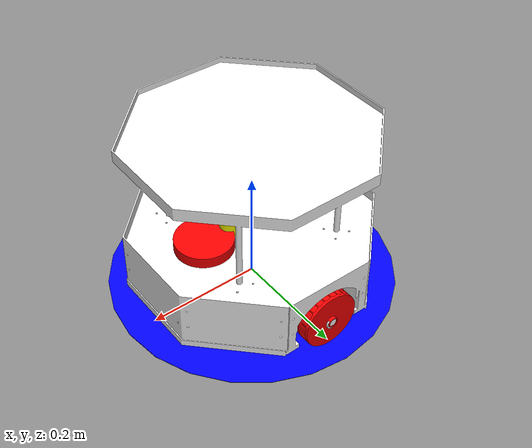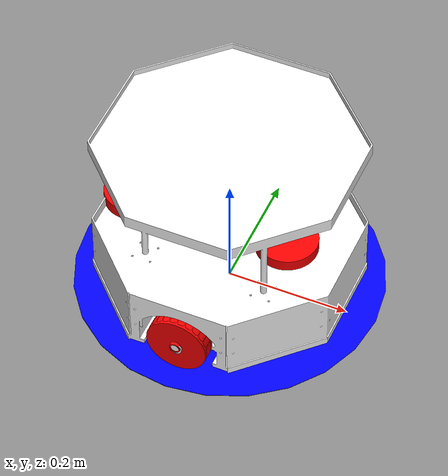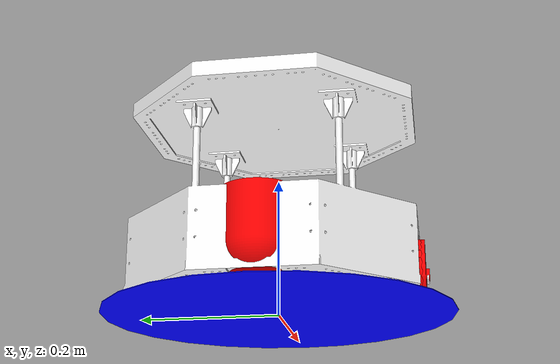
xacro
<?xml version="1.0" encoding="utf-8"?>
<robot name="u_bot" xmlns:xacro="http://www.ros.org/wiki/xacro">

	<xacro:property name="clearance" value="0" />
	<xacro:property name="wheel_radius" value="0.05"/>
	<xacro:property name="wheel_separation" value="0.152"/>
	<xacro:property name="wheel_width" value="0.026"/>
	<xacro:property name="PI" value="3.1415926"/>

	<xacro:include filename="$(find description)/urdf/matherials.xacro" />

	<link name="base_link">
		<visual>
			<origin xyz="0 0 0" rpy="0 0 0" />
			<geometry>
				<sphere radius="0.001" />
			</geometry>
		</visual>
	</link>

	<link name="base_footprint">
		<visual>
			<origin xyz="0 0 0" rpy="0 0 0" />
			<geometry>
				<cylinder length="0.001" radius="0.250" />
			</geometry>
			<material name="Blue" />
		</visual>
	</link>

	<link name="robot_base">
		<visual>
			<origin xyz="0 0 0" rpy="0 0 0" />
			<geometry>
				<mesh filename="package://description/meshes/base.stl" />
			</geometry>
			<material name="White" />
		</visual>
		<collision>
			<origin xyz="0 0 0" rpy="0 0 0" />
			<geometry>
				<mesh filename="package://description/meshes/base.stl" />
			</geometry>
		</collision>
	</link>

	<joint name="base_link_to_abot_base" type="fixed">
		<origin xyz="0 0 0.02" rpy="0 0 0" />
		<parent link="base_link" />
		<child link="robot_base" />
	</joint>

	<joint name="base_footprint_to_base_link" type="fixed">
		<origin xyz="0 0 ${clearance}" rpy="0 0 0" />
		<parent link="base_footprint" />
		<child link="base_link" />
	</joint>

	<xacro:include filename="$(find description)/urdf/left_wheel.xacro" />
	<xacro:include filename="$(find description)/urdf/right_wheel.xacro" />
	<xacro:include filename="$(find description)/urdf/caster_wheel.xacro" />
	<xacro:include filename="$(find description)/urdf/sensors.xacro" />
</robot>

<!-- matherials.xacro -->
<robot name="u_bot">
	<material name="Green">
		<color rgba="0.0 1.0 0.0 1.0"/>
	</material>
	<material name="Blue">
		<color rgba="0.0 0.0 1.0 1.0"/>
	</material>
	<material name="Red">
		<color rgba="1.0 0.0 0.0 1.0"/>
	</material>
	<material name="White">
		<color rgba="1.0 1.0 1.0 1.0"/>
	</material>
	<material name="Yellow">
		<color rgba="1.0 1.0 0.0 1.0"/>
	</material>
	<material name="Black">
		<color rgba="0.0 0.0 0.0 1.0"/>
	</material>
</robot>

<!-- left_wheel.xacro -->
<robot name="u_bot">

	<link name="robot_left_wheel">
		<visual>
			<origin xyz="0 0 0" rpy="0 0 0" />
			<geometry>
				<mesh filename="package://description/meshes/left_wheel.stl" />
			</geometry>
			<material name="Red" />
		</visual>
		<collision>
			<origin xyz="0 0 0" rpy="0 0 0" />
			<geometry>
				<mesh filename="package://description/meshes/left_wheel.stl" />
			</geometry>
		</collision>
	</link>

	<link name="left_wheel">
		<visual>
			<origin xyz="0 0 0" rpy="${PI/2} 0 0" />
			<geometry>
				<cylinder length="${wheel_width}" radius="${wheel_radius}"/>
			</geometry>
			<material name="Red" />
		</visual>
		<collision>
			<origin xyz="0 0 0" rpy="${PI/2} 0 0" />
			<geometry>
				<cylinder length="${wheel_width}" radius="${wheel_radius}"/>
			</geometry>
		</collision>
	</link>

	<joint name="left_wheel_to_robot_left_wheel" type="fixed">
		<origin xyz="0 0 0" rpy="0 0 0" />
		<parent link="left_wheel" />
		<child link="robot_left_wheel" />
	</joint>

	<joint name="left_wheel_to_base" type="continuous">
		<origin xyz="0 0.195 0.03" rpy="0 0 0" />
		<parent link="robot_base" />
		<child link="left_wheel" />
		<axis xyz="0 1 0" />
	</joint>
</robot>

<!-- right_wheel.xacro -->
<robot name="u_bot">

	<link name="robot_right_wheel">
		<visual>
			<origin xyz="0 0 0" rpy="0 0 0" />
			<geometry>
				<mesh filename="package://description/meshes/right_wheel.stl" />
			</geometry>
			<material name="Red" />
		</visual>
		<collision>
			<origin xyz="0 0 0" rpy="0 0 0" />
			<geometry>
				<mesh filename="package://description/meshes/right_wheel.stl" />
			</geometry>
		</collision>
	</link>

	<link name="right_wheel">
		<visual>
			<origin xyz="0 0 0" rpy="${PI/2} 0 0" />
			<geometry>
				<cylinder length="${wheel_width}" radius="${wheel_radius}"/>
			</geometry>
			<material name="Red" />
		</visual>
		<collision>
			<origin xyz="0 0 0" rpy="${PI/2} 0 0" />
			<geometry>
				<cylinder length="${wheel_width}" radius="${wheel_radius}"/>
			</geometry>
		</collision>
	</link>

	<joint name="right_wheel_to_robot_right_wheel" type="fixed">
		<origin xyz="0 0 0" rpy="0 0 0" />
		<parent link="right_wheel" />
		<child link="robot_right_wheel" />
	</joint>

	<joint name="right_wheel_to_base" type="continuous">
		<origin xyz="0 -0.195 0.03" rpy="0 0 0" />
		<parent link="robot_base" />
		<child link="right_wheel" />
		<axis xyz="0 1 0" />
	</joint>
</robot>

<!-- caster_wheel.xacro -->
<robot name="u_bot">

	<link name="robot_caster_wheel_1">
		<visual>
			<origin xyz="0 0 0" rpy="0 0 0" />
			<geometry>
				<mesh filename="package://description/meshes/caster_wheel.stl" />
			</geometry>
			<material name="Red" />
		</visual>
		<collision>
			<origin xyz="0 0 0" rpy="0 0 0" />
			<geometry>
				<mesh filename="package://description/meshes/caster_wheel.stl" />
			</geometry>
		</collision>
	</link>

	<link name="robot_caster_wheel_2">
		<visual>
			<origin xyz="0 0 0" rpy="0 0 0" />
			<geometry>
				<mesh filename="package://description/meshes/caster_wheel.stl" />
			</geometry>
			<material name="Red" />
		</visual>
		<collision>
			<origin xyz="0 0 0" rpy="0 0 0" />
			<geometry>
				<mesh filename="package://description/meshes/caster_wheel.stl" />
			</geometry>
		</collision>
	</link>

	<joint name="caster_wheel_1_to_base" type="continuous">
		<origin xyz="-0.13 0 -0.015" rpy="0 0 0" />
		<parent link="robot_base" />
		<child link="robot_caster_wheel_1" />
		<axis xyz="1 1 0" />
	</joint>

	<joint name="caster_wheel_2_to_base" type="continuous">
		<origin xyz="0.13 0 -0.015" rpy="0 0 0" />
		<parent link="robot_base" />
		<child link="robot_caster_wheel_2" />
		<axis xyz="1 1 0" />
	</joint>
</robot>

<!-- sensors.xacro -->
<robot name="u_bot">

	<link name="robot_lidar">
		<visual>
			<origin xyz="0 0 0" rpy="0 0 0"/>
			<geometry>
				<mesh filename="package://description/meshes/lidar.stl"/>
			</geometry>
			<material name="Yellow"/>
		</visual>
		<collision>
			<origin xyz="0 0 0" rpy="0 0 0"/>
			<geometry>
				<mesh filename="package://description/meshes/lidar.stl"/>
			</geometry>
		</collision>
	</link>

	<joint name="lidar_to_base" type="fixed">
		<origin xyz="0 0 0.12" rpy="0 0 ${PI}"/>
		<parent link="robot_base"/>
		<child link="robot_lidar"/>
		<axis xyz="0 0 0"/>
	</joint>
</robot>
